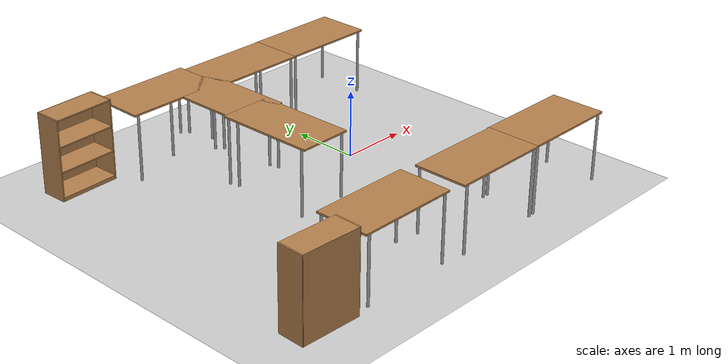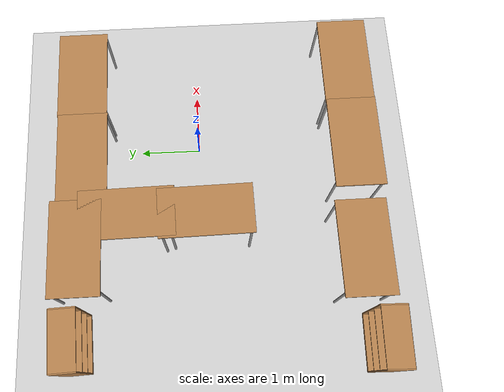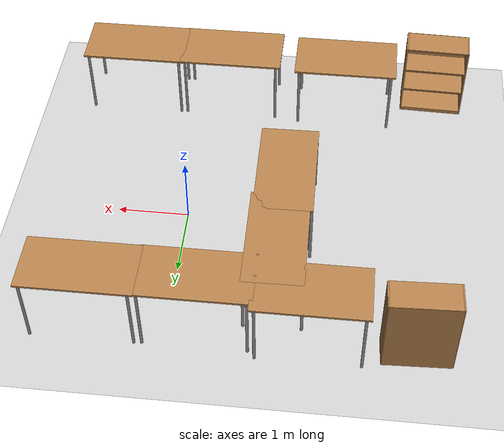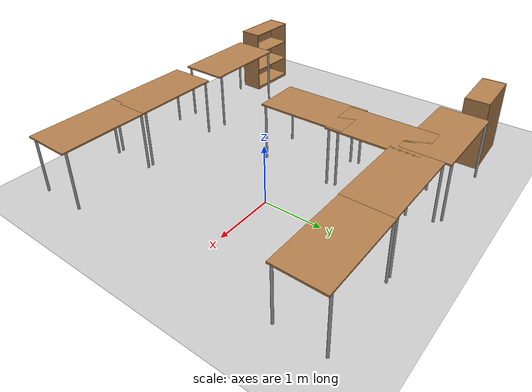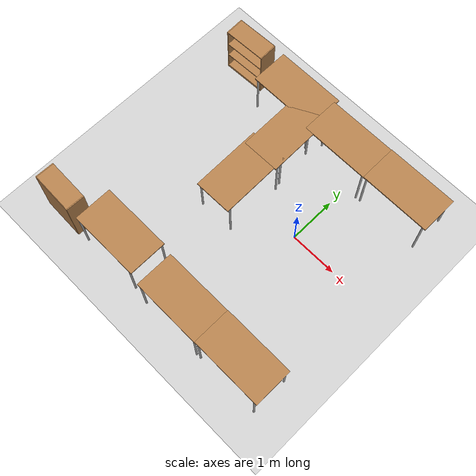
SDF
<sdf version="1.6">
 <world name="default">
  <model name="ground_plane">
   <static>1</static>
   <link name="link">
    <collision name="collision">
     <geometry><plane><normal>0 0 1</normal><size>100 100</size></plane></geometry>
     <surface><friction><ode><mu>100</mu><mu2>50</mu2></ode></friction></surface>
    </collision>
    <visual name="visual">
     <cast_shadows>0</cast_shadows>
     <geometry><plane><normal>0 0 1</normal><size>100 100</size></plane></geometry>
     <material>
      <script><uri>file://media/materials/scripts/gazebo.material</uri><name>Gazebo/Grey</name></script>
     </material>
    </visual>
   </link>
  </model>
  <model name="table_clone_0">
   <static>1</static>
   <link name="link">
    <collision name="surface">
     <pose>0 0 1 0 -0 0</pose>
     <geometry><box><size>1.5 0.8 0.03</size></box></geometry>
     <surface><friction><ode><mu>0.6</mu><mu2>0.6</mu2></ode></friction></surface>
    </collision>
    <visual name="visual1">
     <pose>0 0 1 0 -0 0</pose>
     <geometry><box><size>1.5 0.8 0.03</size></box></geometry>
     <material>
      <script><uri>file://media/materials/scripts/gazebo.material</uri><name>Gazebo/Wood</name></script>
     </material>
    </visual>
    <collision name="front_left_leg">
     <pose>0.68 0.38 0.5 0 -0 0</pose>
     <geometry><cylinder><radius>0.02</radius><length>1</length></cylinder></geometry>
    </collision>
    <visual name="front_left_leg">
     <pose>0.68 0.38 0.5 0 -0 0</pose>
     <geometry><cylinder><radius>0.02</radius><length>1</length></cylinder></geometry>
     <material>
      <script><uri>file://media/materials/scripts/gazebo.material</uri><name>Gazebo/Grey</name></script>
     </material>
    </visual>
    <collision name="front_right_leg">
     <pose>0.68 -0.38 0.5 0 -0 0</pose>
     <geometry><cylinder><radius>0.02</radius><length>1</length></cylinder></geometry>
    </collision>
    <visual name="front_right_leg">
     <pose>0.68 -0.38 0.5 0 -0 0</pose>
     <geometry><cylinder><radius>0.02</radius><length>1</length></cylinder></geometry>
     <material>
      <script><uri>file://media/materials/scripts/gazebo.material</uri><name>Gazebo/Grey</name></script>
     </material>
    </visual>
    <collision name="back_right_leg">
     <pose>-0.68 -0.38 0.5 0 -0 0</pose>
     <geometry><cylinder><radius>0.02</radius><length>1</length></cylinder></geometry>
    </collision>
    <visual name="back_right_leg">
     <pose>-0.68 -0.38 0.5 0 -0 0</pose>
     <geometry><cylinder><radius>0.02</radius><length>1</length></cylinder></geometry>
     <material>
      <script><uri>file://media/materials/scripts/gazebo.material</uri><name>Gazebo/Grey</name></script>
     </material>
    </visual>
    <collision name="back_left_leg">
     <pose>-0.68 0.38 0.5 0 -0 0</pose>
     <geometry><cylinder><radius>0.02</radius><length>1</length></cylinder></geometry>
    </collision>
    <visual name="back_left_leg">
     <pose>-0.68 0.38 0.5 0 -0 0</pose>
     <geometry><cylinder><radius>0.02</radius><length>1</length></cylinder></geometry>
     <material>
      <script><uri>file://media/materials/scripts/gazebo.material</uri><name>Gazebo/Grey</name></script>
     </material>
    </visual>
   </link>
   <pose>1.10313 -2.5131 0 0 -0 0</pose>
  </model>
  <model name="table_clone_1">
   <static>1</static>
   <link name="link">
    <collision name="surface">
     <pose>0 0 1 0 -0 0</pose>
     <geometry><box><size>1.5 0.8 0.03</size></box></geometry>
     <surface><friction><ode><mu>0.6</mu><mu2>0.6</mu2></ode></friction></surface>
    </collision>
    <visual name="visual1">
     <pose>0 0 1 0 -0 0</pose>
     <geometry><box><size>1.5 0.8 0.03</size></box></geometry>
     <material>
      <script><uri>file://media/materials/scripts/gazebo.material</uri><name>Gazebo/Wood</name></script>
     </material>
    </visual>
    <collision name="front_left_leg">
     <pose>0.68 0.38 0.5 0 -0 0</pose>
     <geometry><cylinder><radius>0.02</radius><length>1</length></cylinder></geometry>
    </collision>
    <visual name="front_left_leg">
     <pose>0.68 0.38 0.5 0 -0 0</pose>
     <geometry><cylinder><radius>0.02</radius><length>1</length></cylinder></geometry>
     <material>
      <script><uri>file://media/materials/scripts/gazebo.material</uri><name>Gazebo/Grey</name></script>
     </material>
    </visual>
    <collision name="front_right_leg">
     <pose>0.68 -0.38 0.5 0 -0 0</pose>
     <geometry><cylinder><radius>0.02</radius><length>1</length></cylinder></geometry>
    </collision>
    <visual name="front_right_leg">
     <pose>0.68 -0.38 0.5 0 -0 0</pose>
     <geometry><cylinder><radius>0.02</radius><length>1</length></cylinder></geometry>
     <material>
      <script><uri>file://media/materials/scripts/gazebo.material</uri><name>Gazebo/Grey</name></script>
     </material>
    </visual>
    <collision name="back_right_leg">
     <pose>-0.68 -0.38 0.5 0 -0 0</pose>
     <geometry><cylinder><radius>0.02</radius><length>1</length></cylinder></geometry>
    </collision>
    <visual name="back_right_leg">
     <pose>-0.68 -0.38 0.5 0 -0 0</pose>
     <geometry><cylinder><radius>0.02</radius><length>1</length></cylinder></geometry>
     <material>
      <script><uri>file://media/materials/scripts/gazebo.material</uri><name>Gazebo/Grey</name></script>
     </material>
    </visual>
    <collision name="back_left_leg">
     <pose>-0.68 0.38 0.5 0 -0 0</pose>
     <geometry><cylinder><radius>0.02</radius><length>1</length></cylinder></geometry>
    </collision>
    <visual name="back_left_leg">
     <pose>-0.68 0.38 0.5 0 -0 0</pose>
     <geometry><cylinder><radius>0.02</radius><length>1</length></cylinder></geometry>
     <material>
      <script><uri>file://media/materials/scripts/gazebo.material</uri><name>Gazebo/Grey</name></script>
     </material>
    </visual>
   </link>
   <pose>-0.351036 -2.52058 0 0 -0 0</pose>
  </model>
  <model name="table_clone_2">
   <static>1</static>
   <link name="link">
    <collision name="surface">
     <pose>0 0 1 0 -0 0</pose>
     <geometry><box><size>1.5 0.8 0.03</size></box></geometry>
     <surface><friction><ode><mu>0.6</mu><mu2>0.6</mu2></ode></friction></surface>
    </collision>
    <visual name="visual1">
     <pose>0 0 1 0 -0 0</pose>
     <geometry><box><size>1.5 0.8 0.03</size></box></geometry>
     <material>
      <script><uri>file://media/materials/scripts/gazebo.material</uri><name>Gazebo/Wood</name></script>
     </material>
    </visual>
    <collision name="front_left_leg">
     <pose>0.68 0.38 0.5 0 -0 0</pose>
     <geometry><cylinder><radius>0.02</radius><length>1</length></cylinder></geometry>
    </collision>
    <visual name="front_left_leg">
     <pose>0.68 0.38 0.5 0 -0 0</pose>
     <geometry><cylinder><radius>0.02</radius><length>1</length></cylinder></geometry>
     <material>
      <script><uri>file://media/materials/scripts/gazebo.material</uri><name>Gazebo/Grey</name></script>
     </material>
    </visual>
    <collision name="front_right_leg">
     <pose>0.68 -0.38 0.5 0 -0 0</pose>
     <geometry><cylinder><radius>0.02</radius><length>1</length></cylinder></geometry>
    </collision>
    <visual name="front_right_leg">
     <pose>0.68 -0.38 0.5 0 -0 0</pose>
     <geometry><cylinder><radius>0.02</radius><length>1</length></cylinder></geometry>
     <material>
      <script><uri>file://media/materials/scripts/gazebo.material</uri><name>Gazebo/Grey</name></script>
     </material>
    </visual>
    <collision name="back_right_leg">
     <pose>-0.68 -0.38 0.5 0 -0 0</pose>
     <geometry><cylinder><radius>0.02</radius><length>1</length></cylinder></geometry>
    </collision>
    <visual name="back_right_leg">
     <pose>-0.68 -0.38 0.5 0 -0 0</pose>
     <geometry><cylinder><radius>0.02</radius><length>1</length></cylinder></geometry>
     <material>
      <script><uri>file://media/materials/scripts/gazebo.material</uri><name>Gazebo/Grey</name></script>
     </material>
    </visual>
    <collision name="back_left_leg">
     <pose>-0.68 0.38 0.5 0 -0 0</pose>
     <geometry><cylinder><radius>0.02</radius><length>1</length></cylinder></geometry>
    </collision>
    <visual name="back_left_leg">
     <pose>-0.68 0.38 0.5 0 -0 0</pose>
     <geometry><cylinder><radius>0.02</radius><length>1</length></cylinder></geometry>
     <material>
      <script><uri>file://media/materials/scripts/gazebo.material</uri><name>Gazebo/Grey</name></script>
     </material>
    </visual>
   </link>
   <pose>-2.07162 -2.46656 0 0 -0 0</pose>
  </model>
  <model name="table_clone_4">
   <static>1</static>
   <link name="link">
    <collision name="surface">
     <pose>0 0 1 0 -0 0</pose>
     <geometry><box><size>1.5 0.8 0.03</size></box></geometry>
     <surface><friction><ode><mu>0.6</mu><mu2>0.6</mu2></ode></friction></surface>
    </collision>
    <visual name="visual1">
     <pose>0 0 1 0 -0 0</pose>
     <geometry><box><size>1.5 0.8 0.03</size></box></geometry>
     <material>
      <script><uri>file://media/materials/scripts/gazebo.material</uri><name>Gazebo/Wood</name></script>
     </material>
    </visual>
    <collision name="front_left_leg">
     <pose>0.68 0.38 0.5 0 -0 0</pose>
     <geometry><cylinder><radius>0.02</radius><length>1</length></cylinder></geometry>
    </collision>
    <visual name="front_left_leg">
     <pose>0.68 0.38 0.5 0 -0 0</pose>
     <geometry><cylinder><radius>0.02</radius><length>1</length></cylinder></geometry>
     <material>
      <script><uri>file://media/materials/scripts/gazebo.material</uri><name>Gazebo/Grey</name></script>
     </material>
    </visual>
    <collision name="front_right_leg">
     <pose>0.68 -0.38 0.5 0 -0 0</pose>
     <geometry><cylinder><radius>0.02</radius><length>1</length></cylinder></geometry>
    </collision>
    <visual name="front_right_leg">
     <pose>0.68 -0.38 0.5 0 -0 0</pose>
     <geometry><cylinder><radius>0.02</radius><length>1</length></cylinder></geometry>
     <material>
      <script><uri>file://media/materials/scripts/gazebo.material</uri><name>Gazebo/Grey</name></script>
     </material>
    </visual>
    <collision name="back_right_leg">
     <pose>-0.68 -0.38 0.5 0 -0 0</pose>
     <geometry><cylinder><radius>0.02</radius><length>1</length></cylinder></geometry>
    </collision>
    <visual name="back_right_leg">
     <pose>-0.68 -0.38 0.5 0 -0 0</pose>
     <geometry><cylinder><radius>0.02</radius><length>1</length></cylinder></geometry>
     <material>
      <script><uri>file://media/materials/scripts/gazebo.material</uri><name>Gazebo/Grey</name></script>
     </material>
    </visual>
    <collision name="back_left_leg">
     <pose>-0.68 0.38 0.5 0 -0 0</pose>
     <geometry><cylinder><radius>0.02</radius><length>1</length></cylinder></geometry>
    </collision>
    <visual name="back_left_leg">
     <pose>-0.68 0.38 0.5 0 -0 0</pose>
     <geometry><cylinder><radius>0.02</radius><length>1</length></cylinder></geometry>
     <material>
      <script><uri>file://media/materials/scripts/gazebo.material</uri><name>Gazebo/Grey</name></script>
     </material>
    </visual>
   </link>
   <pose>1.05137 1.84923 0 0 -0 0</pose>
  </model>
  <model name="table_clone_5">
   <static>1</static>
   <link name="link">
    <collision name="surface">
     <pose>0 0 1 0 -0 0</pose>
     <geometry><box><size>1.5 0.8 0.03</size></box></geometry>
     <surface><friction><ode><mu>0.6</mu><mu2>0.6</mu2></ode></friction></surface>
    </collision>
    <visual name="visual1">
     <pose>0 0 1 0 -0 0</pose>
     <geometry><box><size>1.5 0.8 0.03</size></box></geometry>
     <material>
      <script><uri>file://media/materials/scripts/gazebo.material</uri><name>Gazebo/Wood</name></script>
     </material>
    </visual>
    <collision name="front_left_leg">
     <pose>0.68 0.38 0.5 0 -0 0</pose>
     <geometry><cylinder><radius>0.02</radius><length>1</length></cylinder></geometry>
    </collision>
    <visual name="front_left_leg">
     <pose>0.68 0.38 0.5 0 -0 0</pose>
     <geometry><cylinder><radius>0.02</radius><length>1</length></cylinder></geometry>
     <material>
      <script><uri>file://media/materials/scripts/gazebo.material</uri><name>Gazebo/Grey</name></script>
     </material>
    </visual>
    <collision name="front_right_leg">
     <pose>0.68 -0.38 0.5 0 -0 0</pose>
     <geometry><cylinder><radius>0.02</radius><length>1</length></cylinder></geometry>
    </collision>
    <visual name="front_right_leg">
     <pose>0.68 -0.38 0.5 0 -0 0</pose>
     <geometry><cylinder><radius>0.02</radius><length>1</length></cylinder></geometry>
     <material>
      <script><uri>file://media/materials/scripts/gazebo.material</uri><name>Gazebo/Grey</name></script>
     </material>
    </visual>
    <collision name="back_right_leg">
     <pose>-0.68 -0.38 0.5 0 -0 0</pose>
     <geometry><cylinder><radius>0.02</radius><length>1</length></cylinder></geometry>
    </collision>
    <visual name="back_right_leg">
     <pose>-0.68 -0.38 0.5 0 -0 0</pose>
     <geometry><cylinder><radius>0.02</radius><length>1</length></cylinder></geometry>
     <material>
      <script><uri>file://media/materials/scripts/gazebo.material</uri><name>Gazebo/Grey</name></script>
     </material>
    </visual>
    <collision name="back_left_leg">
     <pose>-0.68 0.38 0.5 0 -0 0</pose>
     <geometry><cylinder><radius>0.02</radius><length>1</length></cylinder></geometry>
    </collision>
    <visual name="back_left_leg">
     <pose>-0.68 0.38 0.5 0 -0 0</pose>
     <geometry><cylinder><radius>0.02</radius><length>1</length></cylinder></geometry>
     <material>
      <script><uri>file://media/materials/scripts/gazebo.material</uri><name>Gazebo/Grey</name></script>
     </material>
    </visual>
   </link>
   <pose>-0.41116 1.84059 0 0 -0 0</pose>
  </model>
  <model name="table_clone_6">
   <static>1</static>
   <link name="link">
    <collision name="surface">
     <pose>0 0 1 0 -0 0</pose>
     <geometry><box><size>1.5 0.8 0.03</size></box></geometry>
     <surface><friction><ode><mu>0.6</mu><mu2>0.6</mu2></ode></friction></surface>
    </collision>
    <visual name="visual1">
     <pose>0 0 1 0 -0 0</pose>
     <geometry><box><size>1.5 0.8 0.03</size></box></geometry>
     <material>
      <script><uri>file://media/materials/scripts/gazebo.material</uri><name>Gazebo/Wood</name></script>
     </material>
    </visual>
    <collision name="front_left_leg">
     <pose>0.68 0.38 0.5 0 -0 0</pose>
     <geometry><cylinder><radius>0.02</radius><length>1</length></cylinder></geometry>
    </collision>
    <visual name="front_left_leg">
     <pose>0.68 0.38 0.5 0 -0 0</pose>
     <geometry><cylinder><radius>0.02</radius><length>1</length></cylinder></geometry>
     <material>
      <script><uri>file://media/materials/scripts/gazebo.material</uri><name>Gazebo/Grey</name></script>
     </material>
    </visual>
    <collision name="front_right_leg">
     <pose>0.68 -0.38 0.5 0 -0 0</pose>
     <geometry><cylinder><radius>0.02</radius><length>1</length></cylinder></geometry>
    </collision>
    <visual name="front_right_leg">
     <pose>0.68 -0.38 0.5 0 -0 0</pose>
     <geometry><cylinder><radius>0.02</radius><length>1</length></cylinder></geometry>
     <material>
      <script><uri>file://media/materials/scripts/gazebo.material</uri><name>Gazebo/Grey</name></script>
     </material>
    </visual>
    <collision name="back_right_leg">
     <pose>-0.68 -0.38 0.5 0 -0 0</pose>
     <geometry><cylinder><radius>0.02</radius><length>1</length></cylinder></geometry>
    </collision>
    <visual name="back_right_leg">
     <pose>-0.68 -0.38 0.5 0 -0 0</pose>
     <geometry><cylinder><radius>0.02</radius><length>1</length></cylinder></geometry>
     <material>
      <script><uri>file://media/materials/scripts/gazebo.material</uri><name>Gazebo/Grey</name></script>
     </material>
    </visual>
    <collision name="back_left_leg">
     <pose>-0.68 0.38 0.5 0 -0 0</pose>
     <geometry><cylinder><radius>0.02</radius><length>1</length></cylinder></geometry>
    </collision>
    <visual name="back_left_leg">
     <pose>-0.68 0.38 0.5 0 -0 0</pose>
     <geometry><cylinder><radius>0.02</radius><length>1</length></cylinder></geometry>
     <material>
      <script><uri>file://media/materials/scripts/gazebo.material</uri><name>Gazebo/Grey</name></script>
     </material>
    </visual>
   </link>
   <pose>-1.86553 1.92979 0 0 -0 0</pose>
  </model>
  <model name="table_clone_7">
   <static>1</static>
   <link name="link">
    <collision name="surface">
     <pose>0 0 1 0 -0 0</pose>
     <geometry><box><size>1.5 0.8 0.03</size></box></geometry>
     <surface><friction><ode><mu>0.6</mu><mu2>0.6</mu2></ode></friction></surface>
    </collision>
    <visual name="visual1">
     <pose>0 0 1 0 -0 0</pose>
     <geometry><box><size>1.5 0.8 0.03</size></box></geometry>
     <material>
      <script><uri>file://media/materials/scripts/gazebo.material</uri><name>Gazebo/Wood</name></script>
     </material>
    </visual>
    <collision name="front_left_leg">
     <pose>0.68 0.38 0.5 0 -0 0</pose>
     <geometry><cylinder><radius>0.02</radius><length>1</length></cylinder></geometry>
    </collision>
    <visual name="front_left_leg">
     <pose>0.68 0.38 0.5 0 -0 0</pose>
     <geometry><cylinder><radius>0.02</radius><length>1</length></cylinder></geometry>
     <material>
      <script><uri>file://media/materials/scripts/gazebo.material</uri><name>Gazebo/Grey</name></script>
     </material>
    </visual>
    <collision name="front_right_leg">
     <pose>0.68 -0.38 0.5 0 -0 0</pose>
     <geometry><cylinder><radius>0.02</radius><length>1</length></cylinder></geometry>
    </collision>
    <visual name="front_right_leg">
     <pose>0.68 -0.38 0.5 0 -0 0</pose>
     <geometry><cylinder><radius>0.02</radius><length>1</length></cylinder></geometry>
     <material>
      <script><uri>file://media/materials/scripts/gazebo.material</uri><name>Gazebo/Grey</name></script>
     </material>
    </visual>
    <collision name="back_right_leg">
     <pose>-0.68 -0.38 0.5 0 -0 0</pose>
     <geometry><cylinder><radius>0.02</radius><length>1</length></cylinder></geometry>
    </collision>
    <visual name="back_right_leg">
     <pose>-0.68 -0.38 0.5 0 -0 0</pose>
     <geometry><cylinder><radius>0.02</radius><length>1</length></cylinder></geometry>
     <material>
      <script><uri>file://media/materials/scripts/gazebo.material</uri><name>Gazebo/Grey</name></script>
     </material>
    </visual>
    <collision name="back_left_leg">
     <pose>-0.68 0.38 0.5 0 -0 0</pose>
     <geometry><cylinder><radius>0.02</radius><length>1</length></cylinder></geometry>
    </collision>
    <visual name="back_left_leg">
     <pose>-0.68 0.38 0.5 0 -0 0</pose>
     <geometry><cylinder><radius>0.02</radius><length>1</length></cylinder></geometry>
     <material>
      <script><uri>file://media/materials/scripts/gazebo.material</uri><name>Gazebo/Grey</name></script>
     </material>
    </visual>
   </link>
   <pose>-1.35917 1.146 0 0 -0 1.58478</pose>
  </model>
  <model name="table_clone_7_clone">
   <static>1</static>
   <link name="link">
    <collision name="surface">
     <pose>0 0 1 0 -0 0</pose>
     <geometry><box><size>1.5 0.8 0.03</size></box></geometry>
     <surface><friction><ode><mu>0.6</mu><mu2>0.6</mu2></ode></friction></surface>
    </collision>
    <visual name="visual1">
     <pose>0 0 1 0 -0 0</pose>
     <geometry><box><size>1.5 0.8 0.03</size></box></geometry>
     <material>
      <script><uri>file://media/materials/scripts/gazebo.material</uri><name>Gazebo/Wood</name></script>
     </material>
    </visual>
    <collision name="front_left_leg">
     <pose>0.68 0.38 0.5 0 -0 0</pose>
     <geometry><cylinder><radius>0.02</radius><length>1</length></cylinder></geometry>
    </collision>
    <visual name="front_left_leg">
     <pose>0.68 0.38 0.5 0 -0 0</pose>
     <geometry><cylinder><radius>0.02</radius><length>1</length></cylinder></geometry>
     <material>
      <script><uri>file://media/materials/scripts/gazebo.material</uri><name>Gazebo/Grey</name></script>
     </material>
    </visual>
    <collision name="front_right_leg">
     <pose>0.68 -0.38 0.5 0 -0 0</pose>
     <geometry><cylinder><radius>0.02</radius><length>1</length></cylinder></geometry>
    </collision>
    <visual name="front_right_leg">
     <pose>0.68 -0.38 0.5 0 -0 0</pose>
     <geometry><cylinder><radius>0.02</radius><length>1</length></cylinder></geometry>
     <material>
      <script><uri>file://media/materials/scripts/gazebo.material</uri><name>Gazebo/Grey</name></script>
     </material>
    </visual>
    <collision name="back_right_leg">
     <pose>-0.68 -0.38 0.5 0 -0 0</pose>
     <geometry><cylinder><radius>0.02</radius><length>1</length></cylinder></geometry>
    </collision>
    <visual name="back_right_leg">
     <pose>-0.68 -0.38 0.5 0 -0 0</pose>
     <geometry><cylinder><radius>0.02</radius><length>1</length></cylinder></geometry>
     <material>
      <script><uri>file://media/materials/scripts/gazebo.material</uri><name>Gazebo/Grey</name></script>
     </material>
    </visual>
    <collision name="back_left_leg">
     <pose>-0.68 0.38 0.5 0 -0 0</pose>
     <geometry><cylinder><radius>0.02</radius><length>1</length></cylinder></geometry>
    </collision>
    <visual name="back_left_leg">
     <pose>-0.68 0.38 0.5 0 -0 0</pose>
     <geometry><cylinder><radius>0.02</radius><length>1</length></cylinder></geometry>
     <material>
      <script><uri>file://media/materials/scripts/gazebo.material</uri><name>Gazebo/Grey</name></script>
     </material>
    </visual>
   </link>
   <pose>-1.37949 -0.078431 0 0 -0 1.58478</pose>
  </model>
  <model name="bookshelf_clone_1">
   <static>1</static>
   <link name="link">
    <inertial><mass>1</mass></inertial>
    <collision name="back">
     <pose>0 0.005 0.6 0 -0 0</pose>
     <geometry><box><size>0.9 0.01 1.2</size></box></geometry>
    </collision>
    <visual name="visual1">
     <pose>0 0.005 0.6 0 -0 0</pose>
     <geometry><box><size>0.9 0.01 1.2</size></box></geometry>
     <material>
      <script><uri>file://media/materials/scripts/gazebo.material</uri><name>Gazebo/Wood</name></script>
     </material>
    </visual>
    <collision name="left_side">
     <pose>0.45 -0.195 0.6 0 -0 0</pose>
     <geometry><box><size>0.02 0.4 1.2</size></box></geometry>
    </collision>
    <visual name="visual2">
     <pose>0.45 -0.195 0.6 0 -0 0</pose>
     <geometry><box><size>0.02 0.4 1.2</size></box></geometry>
     <material>
      <script><uri>file://media/materials/scripts/gazebo.material</uri><name>Gazebo/Wood</name></script>
     </material>
    </visual>
    <collision name="right_side">
     <pose>-0.45 -0.195 0.6 0 -0 0</pose>
     <geometry><box><size>0.02 0.4 1.2</size></box></geometry>
    </collision>
    <visual name="visual3">
     <pose>-0.45 -0.195 0.6 0 -0 0</pose>
     <geometry><box><size>0.02 0.4 1.2</size></box></geometry>
     <material>
      <script><uri>file://media/materials/scripts/gazebo.material</uri><name>Gazebo/Wood</name></script>
     </material>
    </visual>
    <collision name="bottom">
     <pose>0 -0.195 0.03 0 -0 0</pose>
     <geometry><box><size>0.88 0.4 0.06</size></box></geometry>
    </collision>
    <visual name="visual4">
     <pose>0 -0.195 0.03 0 -0 0</pose>
     <geometry><box><size>0.88 0.4 0.06</size></box></geometry>
     <material>
      <script><uri>file://media/materials/scripts/gazebo.material</uri><name>Gazebo/Wood</name></script>
     </material>
    </visual>
    <collision name="top">
     <pose>0 -0.195 1.19 0 -0 0</pose>
     <geometry><box><size>0.88 0.4 0.02</size></box></geometry>
    </collision>
    <visual name="visual5">
     <pose>0 -0.195 1.19 0 -0 0</pose>
     <geometry><box><size>0.88 0.4 0.02</size></box></geometry>
     <material>
      <script><uri>file://media/materials/scripts/gazebo.material</uri><name>Gazebo/Wood</name></script>
     </material>
    </visual>
    <collision name="low_shelf">
     <pose>0 -0.195 0.43 0 -0 0</pose>
     <geometry><box><size>0.88 0.4 0.02</size></box></geometry>
    </collision>
    <visual name="visual6">
     <pose>0 -0.195 0.43 0 -0 0</pose>
     <geometry><box><size>0.88 0.4 0.02</size></box></geometry>
     <material>
      <script><uri>file://media/materials/scripts/gazebo.material</uri><name>Gazebo/Wood</name></script>
     </material>
    </visual>
    <collision name="high_shelf">
     <pose>0 -0.195 0.8 0 -0 0</pose>
     <geometry><box><size>0.88 0.4 0.02</size></box></geometry>
    </collision>
    <visual name="visual7">
     <pose>0 -0.195 0.8 0 -0 0</pose>
     <geometry><box><size>0.88 0.4 0.02</size></box></geometry>
     <material>
      <script><uri>file://media/materials/scripts/gazebo.material</uri><name>Gazebo/Wood</name></script>
     </material>
    </visual>
   </link>
   <pose>-3.42716 -2.895 0 0 -0 3.11241</pose>
  </model>
  <model name="bookshelf_clone_2">
   <static>1</static>
   <link name="link">
    <inertial><mass>1</mass></inertial>
    <collision name="back">
     <pose>0 0.005 0.6 0 -0 0</pose>
     <geometry><box><size>0.9 0.01 1.2</size></box></geometry>
    </collision>
    <visual name="visual1">
     <pose>0 0.005 0.6 0 -0 0</pose>
     <geometry><box><size>0.9 0.01 1.2</size></box></geometry>
     <material>
      <script><uri>file://media/materials/scripts/gazebo.material</uri><name>Gazebo/Wood</name></script>
     </material>
    </visual>
    <collision name="left_side">
     <pose>0.45 -0.195 0.6 0 -0 0</pose>
     <geometry><box><size>0.02 0.4 1.2</size></box></geometry>
    </collision>
    <visual name="visual2">
     <pose>0.45 -0.195 0.6 0 -0 0</pose>
     <geometry><box><size>0.02 0.4 1.2</size></box></geometry>
     <material>
      <script><uri>file://media/materials/scripts/gazebo.material</uri><name>Gazebo/Wood</name></script>
     </material>
    </visual>
    <collision name="right_side">
     <pose>-0.45 -0.195 0.6 0 -0 0</pose>
     <geometry><box><size>0.02 0.4 1.2</size></box></geometry>
    </collision>
    <visual name="visual3">
     <pose>-0.45 -0.195 0.6 0 -0 0</pose>
     <geometry><box><size>0.02 0.4 1.2</size></box></geometry>
     <material>
      <script><uri>file://media/materials/scripts/gazebo.material</uri><name>Gazebo/Wood</name></script>
     </material>
    </visual>
    <collision name="bottom">
     <pose>0 -0.195 0.03 0 -0 0</pose>
     <geometry><box><size>0.88 0.4 0.06</size></box></geometry>
    </collision>
    <visual name="visual4">
     <pose>0 -0.195 0.03 0 -0 0</pose>
     <geometry><box><size>0.88 0.4 0.06</size></box></geometry>
     <material>
      <script><uri>file://media/materials/scripts/gazebo.material</uri><name>Gazebo/Wood</name></script>
     </material>
    </visual>
    <collision name="top">
     <pose>0 -0.195 1.19 0 -0 0</pose>
     <geometry><box><size>0.88 0.4 0.02</size></box></geometry>
    </collision>
    <visual name="visual5">
     <pose>0 -0.195 1.19 0 -0 0</pose>
     <geometry><box><size>0.88 0.4 0.02</size></box></geometry>
     <material>
      <script><uri>file://media/materials/scripts/gazebo.material</uri><name>Gazebo/Wood</name></script>
     </material>
    </visual>
    <collision name="low_shelf">
     <pose>0 -0.195 0.43 0 -0 0</pose>
     <geometry><box><size>0.88 0.4 0.02</size></box></geometry>
    </collision>
    <visual name="visual6">
     <pose>0 -0.195 0.43 0 -0 0</pose>
     <geometry><box><size>0.88 0.4 0.02</size></box></geometry>
     <material>
      <script><uri>file://media/materials/scripts/gazebo.material</uri><name>Gazebo/Wood</name></script>
     </material>
    </visual>
    <collision name="high_shelf">
     <pose>0 -0.195 0.8 0 -0 0</pose>
     <geometry><box><size>0.88 0.4 0.02</size></box></geometry>
    </collision>
    <visual name="visual7">
     <pose>0 -0.195 0.8 0 -0 0</pose>
     <geometry><box><size>0.88 0.4 0.02</size></box></geometry>
     <material>
      <script><uri>file://media/materials/scripts/gazebo.material</uri><name>Gazebo/Wood</name></script>
     </material>
    </visual>
   </link>
   <pose>-3.23483 2.22598 0 0 -0 0.037528</pose>
  </model>
 </world>
</sdf>
